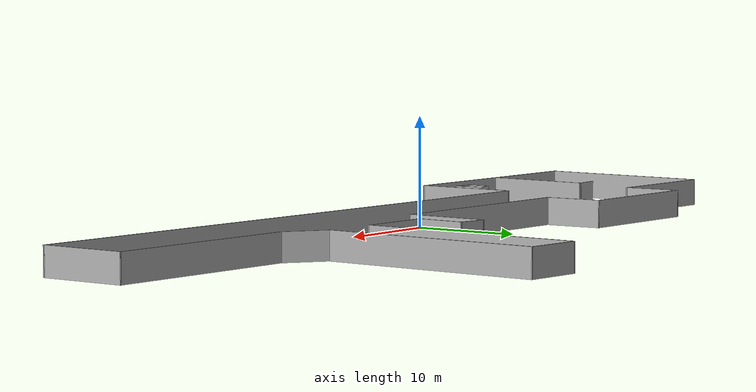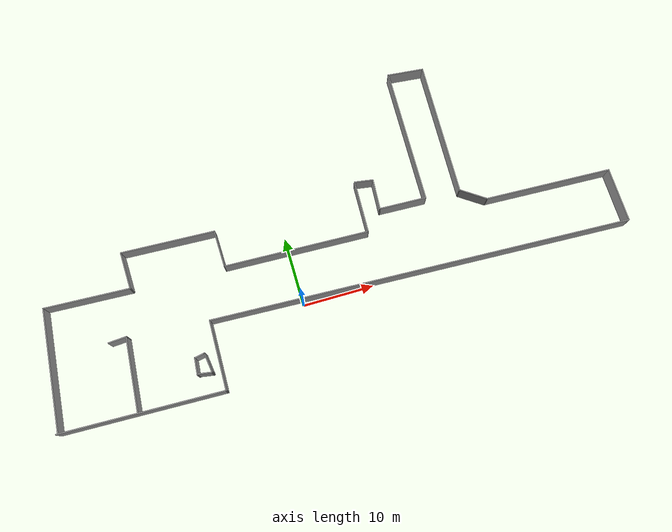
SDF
<?xml version='1.0'?>
<sdf version='1.7'>
  <model name='L1building'>
    <pose>5.95125 10.5265 0 0 -0 0</pose>
    <link name='Wall_0'>
      <collision name='Wall_0_Collision'>
        <geometry>
          <box>
            <size>16.9123 0.15 2.5</size>
          </box>
        </geometry>
        <pose>0 0 1.25 0 -0 0</pose>
      </collision>
      <visual name='Wall_0_Visual'>
        <pose>0 0 1.25 0 -0 0</pose>
        <geometry>
          <box>
            <size>16.9123 0.15 2.5</size>
          </box>
        </geometry>
        <material>
          <script>
            <uri>file://media/materials/scripts/gazebo.material</uri>
            <name>Gazebo/Grey</name>
          </script>
          <ambient>1 1 1 1</ambient>
        </material>
        <meta>
          <layer>0</layer>
        </meta>
      </visual>
      <pose>-40.3079 -9.93824 0 0 -0 1.51317</pose>
    </link>
    <link name='Wall_1'>
      <collision name='Wall_1_Collision'>
        <geometry>
          <box>
            <size>11.9902 0.15 2.5</size>
          </box>
        </geometry>
        <pose>0 0 1.25 0 -0 0</pose>
      </collision>
      <visual name='Wall_1_Visual'>
        <pose>0 0 1.25 0 -0 0</pose>
        <geometry>
          <box>
            <size>11.9902 0.15 2.5</size>
          </box>
        </geometry>
        <material>
          <script>
            <uri>file://media/materials/scripts/gazebo.material</uri>
            <name>Gazebo/Grey</name>
          </script>
          <ambient>1 1 1 1</ambient>
        </material>
        <meta>
          <layer>0</layer>
        </meta>
      </visual>
      <pose>-33.9118 -1.85259 0 0 -0 -0.047583</pose>
    </link>
    <link name='Wall_10'>
      <collision name='Wall_10_Collision'>
        <geometry>
          <box>
            <size>20.1993 0.15 2.5</size>
          </box>
        </geometry>
        <pose>0 0 1.25 0 -0 0</pose>
      </collision>
      <visual name='Wall_10_Visual'>
        <pose>0 0 1.25 0 -0 0</pose>
        <geometry>
          <box>
            <size>20.1993 0.15 2.5</size>
          </box>
        </geometry>
        <material>
          <script>
            <uri>file://media/materials/scripts/gazebo.material</uri>
            <name>Gazebo/Grey</name>
          </script>
          <ambient>1 1 1 1</ambient>
        </material>
        <meta>
          <layer>0</layer>
        </meta>
      </visual>
      <pose>15.0447 9.0892 0 0 -0 1.53066</pose>
    </link>
    <link name='Wall_11'>
      <collision name='Wall_11_Collision'>
        <geometry>
          <box>
            <size>5.32165 0.15 2.5</size>
          </box>
        </geometry>
        <pose>0 0 1.25 0 -0 0</pose>
      </collision>
      <visual name='Wall_11_Visual'>
        <pose>0 0 1.25 0 -0 0</pose>
        <geometry>
          <box>
            <size>5.32165 0.15 2.5</size>
          </box>
        </geometry>
        <material>
          <script>
            <uri>file://media/materials/scripts/gazebo.material</uri>
            <name>Gazebo/Grey</name>
          </script>
          <ambient>1 1 1 1</ambient>
        </material>
        <meta>
          <layer>0</layer>
        </meta>
      </visual>
      <pose>18.0215 18.8644 0 0 -0 -0.093477</pose>
    </link>
    <link name='Wall_12'>
      <collision name='Wall_12_Collision'>
        <geometry>
          <box>
            <size>19.9653 0.15 2.5</size>
          </box>
        </geometry>
        <pose>0 0 1.25 0 -0 0</pose>
      </collision>
      <visual name='Wall_12_Visual'>
        <pose>0 0 1.25 0 -0 0</pose>
        <geometry>
          <box>
            <size>19.9653 0.15 2.5</size>
          </box>
        </geometry>
        <material>
          <script>
            <uri>file://media/materials/scripts/gazebo.material</uri>
            <name>Gazebo/Grey</name>
          </script>
          <ambient>1 1 1 1</ambient>
        </material>
        <meta>
          <layer>0</layer>
        </meta>
      </visual>
      <pose>20.1133 8.72715 0 0 -0 -1.61954</pose>
    </link>
    <link name='Wall_13'>
      <collision name='Wall_13_Collision'>
        <geometry>
          <box>
            <size>4.19038 0.15 2.5</size>
          </box>
        </geometry>
        <pose>0 0 1.25 0 -0 0</pose>
      </collision>
      <visual name='Wall_13_Visual'>
        <pose>0 0 1.25 0 -0 0</pose>
        <geometry>
          <box>
            <size>4.19038 0.15 2.5</size>
          </box>
        </geometry>
        <material>
          <script>
            <uri>file://media/materials/scripts/gazebo.material</uri>
            <name>Gazebo/Grey</name>
          </script>
          <ambient>1 1 1 1</ambient>
        </material>
        <meta>
          <layer>0</layer>
        </meta>
      </visual>
      <pose>21.2799 -2.33531 0 0 -0 -0.61562</pose>
    </link>
    <link name='Wall_14'>
      <collision name='Wall_14_Collision'>
        <geometry>
          <box>
            <size>18.2667 0.15 2.5</size>
          </box>
        </geometry>
        <pose>0 0 1.25 0 -0 0</pose>
      </collision>
      <visual name='Wall_14_Visual'>
        <pose>0 0 1.25 0 -0 0</pose>
        <geometry>
          <box>
            <size>18.2667 0.15 2.5</size>
          </box>
        </geometry>
        <material>
          <script>
            <uri>file://media/materials/scripts/gazebo.material</uri>
            <name>Gazebo/Grey</name>
          </script>
          <ambient>1 1 1 1</ambient>
        </material>
        <meta>
          <layer>0</layer>
        </meta>
      </visual>
      <pose>31.9803 -3.86394 0 0 -0 -0.039979</pose>
    </link>
    <link name='Wall_15'>
      <collision name='Wall_15_Collision'>
        <geometry>
          <box>
            <size>7.95573 0.15 2.5</size>
          </box>
        </geometry>
        <pose>0 0 1.25 0 -0 0</pose>
      </collision>
      <visual name='Wall_15_Visual'>
        <pose>0 0 1.25 0 -0 0</pose>
        <geometry>
          <box>
            <size>7.95573 0.15 2.5</size>
          </box>
        </geometry>
        <material>
          <script>
            <uri>file://media/materials/scripts/gazebo.material</uri>
            <name>Gazebo/Grey</name>
          </script>
          <ambient>1 1 1 1</ambient>
        </material>
        <meta>
          <layer>0</layer>
        </meta>
      </visual>
      <pose>40.951 -8.12802 0 0 -0 -1.59141</pose>
    </link>
    <link name='Wall_16'>
      <collision name='Wall_16_Collision'>
        <geometry>
          <box>
            <size>59.7418 0.15 2.5</size>
          </box>
        </geometry>
        <pose>0 0 1.25 0 -0 0</pose>
      </collision>
      <visual name='Wall_16_Visual'>
        <pose>0 0 1.25 0 -0 0</pose>
        <geometry>
          <box>
            <size>59.7418 0.15 2.5</size>
          </box>
        </geometry>
        <material>
          <script>
            <uri>file://media/materials/scripts/gazebo.material</uri>
            <name>Gazebo/Grey</name>
          </script>
          <ambient>1 1 1 1</ambient>
        </material>
        <meta>
          <layer>0</layer>
        </meta>
      </visual>
      <pose>11.1024 -10.7428 0 0 -0 3.09838</pose>
    </link>
    <link name='Wall_17'>
      <collision name='Wall_17_Collision'>
        <geometry>
          <box>
            <size>9.80485 0.15 2.5</size>
          </box>
        </geometry>
        <pose>0 0 1.25 0 -0 0</pose>
      </collision>
      <visual name='Wall_17_Visual'>
        <pose>0 0 1.25 0 -0 0</pose>
        <geometry>
          <box>
            <size>9.80485 0.15 2.5</size>
          </box>
        </geometry>
        <material>
          <script>
            <uri>file://media/materials/scripts/gazebo.material</uri>
            <name>Gazebo/Grey</name>
          </script>
          <ambient>1 1 1 1</ambient>
        </material>
        <meta>
          <layer>0</layer>
        </meta>
      </visual>
      <pose>-18.7059 -14.2828 0 0 -0 -1.57913</pose>
    </link>
    <link name='Wall_18'>
      <collision name='Wall_18_Collision'>
        <geometry>
          <box>
            <size>22.4476 0.15 2.5</size>
          </box>
        </geometry>
        <pose>0 0 1.25 0 -0 0</pose>
      </collision>
      <visual name='Wall_18_Visual'>
        <pose>0 0 1.25 0 -0 0</pose>
        <geometry>
          <box>
            <size>22.4476 0.15 2.5</size>
          </box>
        </geometry>
        <material>
          <script>
            <uri>file://media/materials/scripts/gazebo.material</uri>
            <name>Gazebo/Grey</name>
          </script>
          <ambient>1 1 1 1</ambient>
        </material>
        <meta>
          <layer>0</layer>
        </meta>
      </visual>
      <pose>-29.889 -18.748 0 0 -0 3.10911</pose>
    </link>
    <link name='Wall_2'>
      <collision name='Wall_2_Collision'>
        <geometry>
          <box>
            <size>5.46547 0.15 2.5</size>
          </box>
        </geometry>
        <pose>0 0 1.25 0 -0 0</pose>
      </collision>
      <visual name='Wall_2_Visual'>
        <pose>0 0 1.25 0 -0 0</pose>
        <geometry>
          <box>
            <size>5.46547 0.15 2.5</size>
          </box>
        </geometry>
        <material>
          <script>
            <uri>file://media/materials/scripts/gazebo.material</uri>
            <name>Gazebo/Grey</name>
          </script>
          <ambient>1 1 1 1</ambient>
        </material>
        <meta>
          <layer>0</layer>
        </meta>
      </visual>
      <pose>-28.119 0.520815 0 0 -0 1.61622</pose>
    </link>
    <link name='Wall_20'>
      <collision name='Wall_20_Collision'>
        <geometry>
          <box>
            <size>10.2225 0.15 2.5</size>
          </box>
        </geometry>
        <pose>0 0 1.25 0 -0 0</pose>
      </collision>
      <visual name='Wall_20_Visual'>
        <pose>0 0 1.25 0 -0 0</pose>
        <geometry>
          <box>
            <size>10.2225 0.15 2.5</size>
          </box>
        </geometry>
        <material>
          <script>
            <uri>file://media/materials/scripts/gazebo.material</uri>
            <name>Gazebo/Grey</name>
          </script>
          <ambient>1 1 1 1</ambient>
        </material>
        <meta>
          <layer>0</layer>
        </meta>
      </visual>
      <pose>-30.1304 -13.5185 0 0 -0 1.51486</pose>
    </link>
    <link name='Wall_21'>
      <collision name='Wall_21_Collision'>
        <geometry>
          <box>
            <size>2.56899 0.15 2.5</size>
          </box>
        </geometry>
        <pose>0 0 1.25 0 -0 0</pose>
      </collision>
      <visual name='Wall_21_Visual'>
        <pose>0 0 1.25 0 -0 0</pose>
        <geometry>
          <box>
            <size>2.56899 0.15 2.5</size>
          </box>
        </geometry>
        <material>
          <script>
            <uri>file://media/materials/scripts/gazebo.material</uri>
            <name>Gazebo/Grey</name>
          </script>
          <ambient>1 1 1 1</ambient>
        </material>
        <meta>
          <layer>0</layer>
        </meta>
      </visual>
      <pose>-31.0556 -8.57052 0 0 -0 -3.07502</pose>
    </link>
    <link name='Wall_23'>
      <collision name='Wall_23_Collision'>
        <geometry>
          <box>
            <size>2.40846 0.15 2.5</size>
          </box>
        </geometry>
        <pose>0 0 1.25 0 -0 0</pose>
      </collision>
      <visual name='Wall_23_Visual'>
        <pose>0 0 1.25 0 -0 0</pose>
        <geometry>
          <box>
            <size>2.40846 0.15 2.5</size>
          </box>
        </geometry>
        <material>
          <script>
            <uri>file://media/materials/scripts/gazebo.material</uri>
            <name>Gazebo/Grey</name>
          </script>
          <ambient>1 1 1 1</ambient>
        </material>
        <meta>
          <layer>0</layer>
        </meta>
      </visual>
      <pose>-21.8034 -14.9264 0 0 -0 1.49949</pose>
    </link>
    <link name='Wall_24'>
      <collision name='Wall_24_Collision'>
        <geometry>
          <box>
            <size>1.53886 0.15 2.5</size>
          </box>
        </geometry>
        <pose>0 0 1.25 0 -0 0</pose>
      </collision>
      <visual name='Wall_24_Visual'>
        <pose>0 0 1.25 0 -0 0</pose>
        <geometry>
          <box>
            <size>1.53886 0.15 2.5</size>
          </box>
        </geometry>
        <material>
          <script>
            <uri>file://media/materials/scripts/gazebo.material</uri>
            <name>Gazebo/Grey</name>
          </script>
          <ambient>1 1 1 1</ambient>
        </material>
        <meta>
          <layer>0</layer>
        </meta>
      </visual>
      <pose>-21.0391 -13.6794 0 0 -0 0.174672</pose>
    </link>
    <link name='Wall_25'>
      <collision name='Wall_25_Collision'>
        <geometry>
          <box>
            <size>2.91487 0.15 2.5</size>
          </box>
        </geometry>
        <pose>0 0 1.25 0 -0 0</pose>
      </collision>
      <visual name='Wall_25_Visual'>
        <pose>0 0 1.25 0 -0 0</pose>
        <geometry>
          <box>
            <size>2.91487 0.15 2.5</size>
          </box>
        </geometry>
        <material>
          <script>
            <uri>file://media/materials/scripts/gazebo.material</uri>
            <name>Gazebo/Grey</name>
          </script>
          <ambient>1 1 1 1</ambient>
        </material>
        <meta>
          <layer>0</layer>
        </meta>
      </visual>
      <pose>-20.1541 -14.9264 0 0 -0 -1.42478</pose>
    </link>
    <link name='Wall_26'>
      <collision name='Wall_26_Collision'>
        <geometry>
          <box>
            <size>2.10754 0.15 2.5</size>
          </box>
        </geometry>
        <pose>0 0 1.25 0 -0 0</pose>
      </collision>
      <visual name='Wall_26_Visual'>
        <pose>0 0 1.25 0 -0 0</pose>
        <geometry>
          <box>
            <size>2.10754 0.15 2.5</size>
          </box>
        </geometry>
        <material>
          <script>
            <uri>file://media/materials/scripts/gazebo.material</uri>
            <name>Gazebo/Grey</name>
          </script>
          <ambient>1 1 1 1</ambient>
        </material>
        <meta>
          <layer>0</layer>
        </meta>
      </visual>
      <pose>-20.9184 -16.1332 0 0 -0 2.97644</pose>
    </link>
    <link name='Wall_3'>
      <collision name='Wall_3_Collision'>
        <geometry>
          <box>
            <size>13.2761 0.15 2.5</size>
          </box>
        </geometry>
        <pose>0 0 1.25 0 -0 0</pose>
      </collision>
      <visual name='Wall_3_Visual'>
        <pose>0 0 1.25 0 -0 0</pose>
        <geometry>
          <box>
            <size>13.2761 0.15 2.5</size>
          </box>
        </geometry>
        <material>
          <script>
            <uri>file://media/materials/scripts/gazebo.material</uri>
            <name>Gazebo/Grey</name>
          </script>
          <ambient>1 1 1 1</ambient>
        </material>
        <meta>
          <layer>0</layer>
        </meta>
      </visual>
      <pose>-21.6827 2.89422 0 0 -0 -0.042918</pose>
    </link>
    <link name='Wall_4'>
      <collision name='Wall_4_Collision'>
        <geometry>
          <box>
            <size>5.46242 0.15 2.5</size>
          </box>
        </geometry>
        <pose>0 0 1.25 0 -0 0</pose>
      </collision>
      <visual name='Wall_4_Visual'>
        <pose>0 0 1.25 0 -0 0</pose>
        <geometry>
          <box>
            <size>5.46242 0.15 2.5</size>
          </box>
        </geometry>
        <material>
          <script>
            <uri>file://media/materials/scripts/gazebo.material</uri>
            <name>Gazebo/Grey</name>
          </script>
          <ambient>1 1 1 1</ambient>
        </material>
        <meta>
          <layer>0</layer>
        </meta>
      </visual>
      <pose>-15.0452 -0.042365 0 0 -0 -1.5405</pose>
    </link>
    <link name='Wall_5'>
      <collision name='Wall_5_Collision'>
        <geometry>
          <box>
            <size>20.5178 0.15 2.5</size>
          </box>
        </geometry>
        <pose>0 0 1.25 0 -0 0</pose>
      </collision>
      <visual name='Wall_5_Visual'>
        <pose>0 0 1.25 0 -0 0</pose>
        <geometry>
          <box>
            <size>20.5178 0.15 2.5</size>
          </box>
        </geometry>
        <material>
          <script>
            <uri>file://media/materials/scripts/gazebo.material</uri>
            <name>Gazebo/Grey</name>
          </script>
          <ambient>1 1 1 1</ambient>
        </material>
        <meta>
          <layer>0</layer>
        </meta>
      </visual>
      <pose>-4.7873 -3.0594 0 0 -0 -0.035558</pose>
    </link>
    <link name='Wall_6'>
      <collision name='Wall_6_Collision'>
        <geometry>
          <box>
            <size>7.71955 0.15 2.5</size>
          </box>
        </geometry>
        <pose>0 0 1.25 0 -0 0</pose>
      </collision>
      <visual name='Wall_6_Visual'>
        <pose>0 0 1.25 0 -0 0</pose>
        <geometry>
          <box>
            <size>7.71955 0.15 2.5</size>
          </box>
        </geometry>
        <material>
          <script>
            <uri>file://media/materials/scripts/gazebo.material</uri>
            <name>Gazebo/Grey</name>
          </script>
          <ambient>1 1 1 1</ambient>
        </material>
        <meta>
          <layer>0</layer>
        </meta>
      </visual>
      <pose>5.55108 0.359906 0 0 -0 1.52827</pose>
    </link>
    <link name='Wall_7'>
      <collision name='Wall_7_Collision'>
        <geometry>
          <box>
            <size>2.75577 0.15 2.5</size>
          </box>
        </geometry>
        <pose>0 0 1.25 0 -0 0</pose>
      </collision>
      <visual name='Wall_7_Visual'>
        <pose>0 0 1.25 0 -0 0</pose>
        <geometry>
          <box>
            <size>2.75577 0.15 2.5</size>
          </box>
        </geometry>
        <material>
          <script>
            <uri>file://media/materials/scripts/gazebo.material</uri>
            <name>Gazebo/Grey</name>
          </script>
          <ambient>1 1 1 1</ambient>
        </material>
        <meta>
          <layer>0</layer>
        </meta>
      </visual>
      <pose>6.99925 3.94012 0 0 -0 -0.154997</pose>
    </link>
    <link name='Wall_8'>
      <collision name='Wall_8_Collision'>
        <geometry>
          <box>
            <size>4.58667 0.15 2.5</size>
          </box>
        </geometry>
        <pose>0 0 1.25 0 -0 0</pose>
      </collision>
      <visual name='Wall_8_Visual'>
        <pose>0 0 1.25 0 -0 0</pose>
        <geometry>
          <box>
            <size>4.58667 0.15 2.5</size>
          </box>
        </geometry>
        <material>
          <script>
            <uri>file://media/materials/scripts/gazebo.material</uri>
            <name>Gazebo/Grey</name>
          </script>
          <ambient>1 1 1 1</ambient>
        </material>
        <meta>
          <layer>0</layer>
        </meta>
      </visual>
      <pose>8.12561 1.52649 0 0 -0 -1.6434</pose>
    </link>
    <link name='Wall_9'>
      <collision name='Wall_9_Collision'>
        <geometry>
          <box>
            <size>6.83207 0.15 2.5</size>
          </box>
        </geometry>
        <pose>0 0 1.25 0 -0 0</pose>
      </collision>
      <visual name='Wall_9_Visual'>
        <pose>0 0 1.25 0 -0 0</pose>
        <geometry>
          <box>
            <size>6.83207 0.15 2.5</size>
          </box>
        </geometry>
        <material>
          <script>
            <uri>file://media/materials/scripts/gazebo.material</uri>
            <name>Gazebo/Grey</name>
          </script>
          <ambient>1 1 1 1</ambient>
        </material>
        <meta>
          <layer>0</layer>
        </meta>
      </visual>
      <pose>11.3036 -0.806681 0 0 -0 -0.036129</pose>
    </link>
    <static>1</static>
  </model>
</sdf>
